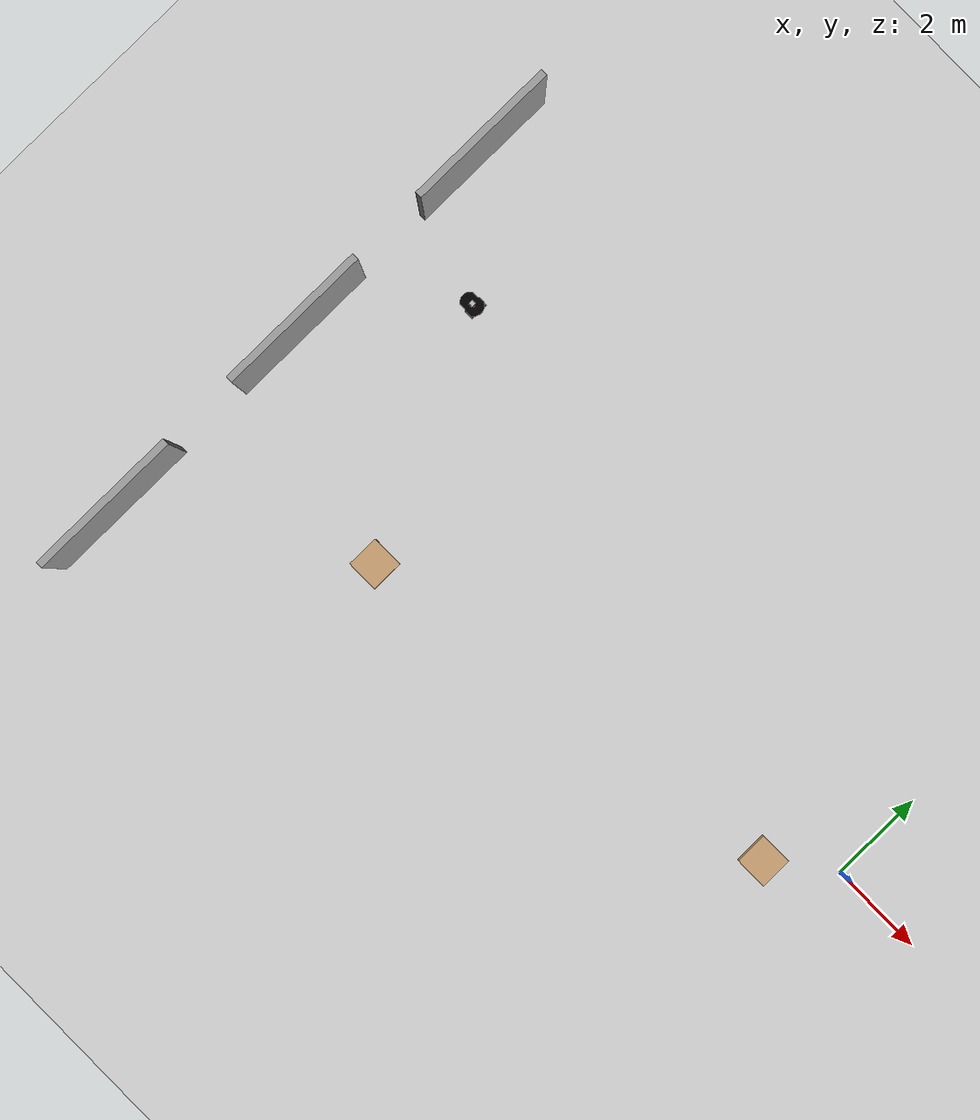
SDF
<sdf version="1.8">
 <world name="my_world">
  <physics name="1ms" type="ignored">
   <max_step_size>0.001</max_step_size>
   <real_time_factor>1.0</real_time_factor>
  </physics>
  <plugin filename="ignition-gazebo-physics-system" name="gz::sim::systems::Physics"/>
  <plugin filename="ignition-gazebo-user-commands-system" name="gz::sim::systems::UserCommands"/>
  <plugin filename="ignition-gazebo-scene-broadcaster-system" name="gz::sim::systems::SceneBroadcaster"/>
  <plugin filename="libignition-gazebo-sensors-system.so" name="ignition::gazebo::systems::Sensors">
   <render_engine>ogre2</render_engine>
  </plugin>
  <plugin filename="ignition-gazebo-imu-system" name="ignition::gazebo::systems::Imu"/>
  <light type="directional" name="sun">
   <pose>0 0 10 0 0 0</pose>
   <diffuse>0.8 0.8 0.8 1</diffuse>
   <specular>0.2 0.2 0.2 1</specular>
   <attenuation>
    <range>1000</range>
    <constant>0.9</constant>
    <linear>0.01</linear>
    <quadratic>0.001</quadratic>
   </attenuation>
   <direction>-0.5 0.1 -0.9</direction>
  </light>
  <model name="ground_plane">
   <static>true</static>
   <link name="link">
    <collision name="collision">
     <geometry><plane><normal>0 0 1</normal><size>100 100</size></plane></geometry>
    </collision>
    <visual name="visual">
     <geometry><plane><normal>0 0 1</normal><size>100 100</size></plane></geometry>
     <material>
      <ambient>0.8 0.8 0.8 1</ambient>
      <diffuse>0.8 0.8 0.8 1</diffuse>
      <specular>0.8 0.8 0.8 1</specular>
     </material>
    </visual>
   </link>
  </model>
  <include>
   <uri>model://garage_door</uri>
   <name>right_door</name>
   <pose>-15.033500 -5.081130 1.687260 0 0 0</pose>
  </include>
  <include>
   <uri>model://garage_door</uri>
   <name>central_door</name>
   <pose>-15.033500 -0.136491 1.687260 0 0 0</pose>
  </include>
  <include>
   <uri>model://garage_door</uri>
   <name>left_door</name>
   <pose>-15.033500 4.803520 1.687260 0 0 0</pose>
  </include>
  <include>
   <uri>model://pioneer2dx</uri>
   <name>robot_scan</name>
   <pose>-13.10 2.64 0 0 0 0</pose>
   <plugin filename="ignition-gazebo-pose-publisher-system" name="ignition::gazebo::systems::PosePublisher">
    <publish_link_pose>true</publish_link_pose>
    <use_pose_vector_msg>true</use_pose_vector_msg>
    <static_publisher>true</static_publisher>
    <static_update_frequency>1</static_update_frequency>
   </plugin>
   <plugin filename="ignition-gazebo-odometry-publisher-system" name="ignition::gazebo::systems::OdometryPublisher">
    <odom_topic>/odom</odom_topic>
    <odom_frame>odom</odom_frame>
    <robot_base_frame>base_footprint</robot_base_frame>
    <odom_publish_frequency>20</odom_publish_frequency>
   </plugin>
  </include>
  <include>
   <uri>model://parallelepiped</uri>
   <pose>-10.773700 -2.313900 0.15 0 0 0</pose>
   <name>start_parallelepiped</name>
  </include>
  <include>
   <uri>model://parallelepiped</uri>
   <pose>-1.257560 -0.930217 0.149231 0 0 0</pose>
   <name>end_parallelepiped</name>
  </include>
 </world>
</sdf>

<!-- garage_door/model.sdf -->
<sdf version="1.8">
    <model name = "garage_door">
        <static>true</static>
        <link name = "door_link">
            <visual name = "door_visual">
                <geometry>
                    <box>
                        <size> 0.15 3.30 3.25 </size>
                    </box>
                </geometry>
                <material>
                    <ambient>0.3 0.3 0.3 1</ambient>
                    <diffuse>0.6 0.6 0.6 1</diffuse>
                    <specular>0.9 0.9 0.9 1</specular>
                    <emissive>0 0 0 1</emissive>
                </material>
            </visual>
        </link>
    </model>
</sdf>

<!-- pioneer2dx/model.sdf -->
<sdf version="1.5">
  <model name="pioneer2dx" canonical_link='base_footprint'>
    <plugin
        filename="ignition-gazebo-joint-state-publisher-system"
        name="ignition::gazebo::systems::JointStatePublisher">
    </plugin>

    <link name='base_footprint'/>

    <joint name='footprint_to_base_joint' type='fixed'>
      <pose>0 0 0.01 0 0 0</pose>
      <parent>base_footprint</parent>
      <child>base_link</child>
      <use_parent_model_frame>true</use_parent_model_frame>
    </joint>

    <link name="base_link">
      <pose relative_to='base_footprint'>0 0 0.16 0 0 0</pose>
      <inertial>
        <mass>5.67</mass>
        <inertia>
          <ixx>0.07</ixx>
          <iyy>0.08</iyy>
          <izz>0.10</izz>
          <ixy>0</ixy>
          <ixz>0</ixz>
          <iyz>0</iyz>
        </inertia>
      </inertial>
      <collision name="collision">
        <geometry>
          <box>
            <size>0.445 0.277 0.17</size>
          </box>
        </geometry>
      </collision>
      <visual name="visual">
        <pose>0 0 0.04 0 0 0</pose>
        <geometry>
          <mesh>
            <uri>model://pioneer2dx/meshes/chassis.dae</uri>
          </mesh>
        </geometry>
      </visual>
      <collision name="caster_collision">
        <pose>-0.200 0 -0.12 0 0 0</pose>
        <geometry>
          <sphere>
            <radius>0.04</radius>
          </sphere>
        </geometry>
        <surface>
          <friction>
            <ode>
              <mu>0</mu>
              <mu2>0</mu2>
              <slip1>1.0</slip1>
              <slip2>1.0</slip2>
            </ode>
          </friction>
        </surface>
      </collision>
      <visual name="caster_visual">
        <pose>-0.200 0 -0.12 0 0 0</pose>
        <geometry>
          <sphere>
            <radius>0.04</radius>
          </sphere>
        </geometry>
        <material>
          <script>
            <uri>file://media/materials/scripts/gazebo.material</uri>
            <name>Gazebo/FlatBlack</name>
          </script>
        </material>
      </visual>

      <!-- IMU Sensor -->
      <sensor name="imu_sensor" type="imu">
        <always_on>true</always_on>
        <update_rate>200</update_rate>
        <topic>/imu/data</topic>
        <ignition_frame_id>base_link</ignition_frame_id>
        <imu>
          <angular_velocity>
            <x><noise type="gaussian"><mean>0</mean><stddev>0.009</stddev></noise></x>
            <y><noise type="gaussian"><mean>0</mean><stddev>0.009</stddev></noise></y>
            <z><noise type="gaussian"><mean>0</mean><stddev>0.009</stddev></noise></z>
          </angular_velocity>
          <linear_acceleration>
            <x><noise type="gaussian"><mean>0</mean><stddev>0.001</stddev></noise></x>
            <y><noise type="gaussian"><mean>0</mean><stddev>0.001</stddev></noise></y>
            <z><noise type="gaussian"><mean>0</mean><stddev>0.001</stddev></noise></z>
          </linear_acceleration>
        </imu>
      </sensor>
    </link>

    <link name="lidar_link">
      <pose relative_to='base_link'>0 0 0.19 0 0 0</pose>
      <inertial>
        <mass>0.1</mass>
        <inertia>
          <ixx>0.000166667</ixx>
          <iyy>0.000166667</iyy>
          <izz>0.000166667</izz>
        </inertia>
      </inertial>
      <collision name="collision">
        <geometry>
          <box>
            <size>0.1 0.1 0.1</size>
          </box>
        </geometry>
      </collision>
      <visual name="visual">
        <geometry>
          <box>
            <size>0.1 0.1 0.1</size>
          </box>
        </geometry>
      </visual>

      <sensor name='front_lidar' type='gpu_lidar'>
        <pose>0 0 0 0 0 0</pose>
        <topic>/scan</topic>
        <ignition_frame_id>lidar_link</ignition_frame_id>
        <update_rate>20</update_rate>
        <lidar>
          <scan>
            <horizontal>
              <samples>1800</samples> <!-- 1800 rays for 0.2 deg resolution -->
              <resolution>1</resolution>
              <min_angle>-3.1459</min_angle>
              <max_angle>3.1459</max_angle>
            </horizontal>
            <vertical>
              <samples>16</samples>
              <resolution>1</resolution>
              <min_angle>-0.261799</min_angle>
              <max_angle>0.261799</max_angle>
            </vertical>
          </scan>
          <range>
            <min>0.05</min>
            <max>100</max>
            <resolution>0.01</resolution>
          </range>
          <noise>
            <type>gaussian</type>
            <mean>0</mean>
            <stddev>0.01</stddev>
          </noise>
        </lidar>
        <visualize>true</visualize>
      </sensor>
    </link>

    <link name="right_wheel">
      <pose relative_to='base_link'>0.1 -0.17 -0.05 1.5707 0 0</pose>
      <inertial>
        <mass>1.5</mass>
        <inertia>
          <ixx>0.0051</ixx>
          <iyy>0.0051</iyy>
          <izz>0.0090</izz>
          <ixy>0</ixy>
          <ixz>0</ixz>
          <iyz>0</iyz>
        </inertia>
      </inertial>
      <collision name="collision">
        <geometry>
          <cylinder>
            <radius>0.11</radius>
            <length>0.05</length>
          </cylinder>
        </geometry>
        <surface>
          <friction>
            <ode>
              <mu>100000.0</mu>
              <mu2>100000.0</mu2>
              <slip1>0.0</slip1>
              <slip2>0.0</slip2>
            </ode>
          </friction>
        </surface>
      </collision>
      <visual name="visual">
        <geometry>
          <cylinder>
            <radius>0.11</radius>
            <length>0.05</length>
          </cylinder>
        </geometry>
        <material>
          <script>
            <uri>file://media/materials/scripts/gazebo.material</uri>
            <name>Gazebo/FlatBlack</name>
          </script>
        </material>
      </visual>
    </link>
    <link name="left_wheel">
      <pose relative_to='base_link'>0.1 0.17 -0.05 -1.5707 0 0</pose>
      <inertial>
        <mass>1.5</mass>
        <inertia>
          <ixx>0.0051</ixx>
          <iyy>0.0051</iyy>
          <izz>0.0090</izz>
          <ixy>0</ixy>
          <ixz>0</ixz>
          <iyz>0</iyz>
        </inertia>
      </inertial>
      <collision name="collision">
        <geometry>
          <cylinder>
            <radius>0.11</radius>
            <length>0.05</length>
          </cylinder>
        </geometry>
        <surface>
          <friction>
            <ode>
              <mu>100000.0</mu>
              <mu2>100000.0</mu2>
              <slip1>0.0</slip1>
              <slip2>0.0</slip2>
            </ode>
          </friction>
        </surface>
      </collision>
      <visual name="visual">
        <geometry>
          <cylinder>
            <radius>0.11</radius>
            <length>0.05</length>
          </cylinder>
        </geometry>
        <material>
          <script>
            <uri>file://media/materials/scripts/gazebo.material</uri>
            <name>Gazebo/FlatBlack</name>
          </script>
        </material>
      </visual>
    </link>

    <joint name='lidar_joint' type='fixed'>
      <parent>base_link</parent>
      <child>lidar_link</child>
    </joint>

    <!-- D435 Camera Link -->
    <link name="camera_link">
      <pose relative_to='base_link'>0.25 0 0.10 0 0 0</pose>
      <inertial>
        <mass>0.072</mass>
        <inertia>
          <ixx>0.00003881</ixx>
          <iyy>0.00000498</iyy>
          <izz>0.00003879</izz>
        </inertia>
      </inertial>
      <collision name="collision">
        <geometry>
          <box>
            <size>0.025 0.09 0.025</size>
          </box>
        </geometry>
      </collision>
      <visual name="visual">
        <geometry>
          <box>
            <size>0.025 0.09 0.025</size>
          </box>
        </geometry>
        <material>
          <ambient>0.1 0.1 0.1 1</ambient>
          <diffuse>0.2 0.2 0.2 1</diffuse>
        </material>
      </visual>

      <!-- RGB Camera -->
      <sensor name="color_camera" type="camera">
        <pose>0 0 0 0 0 0</pose>
        <topic>/camera/color/image_raw</topic>
        <camera_info_topic>/camera/color/camera_info</camera_info_topic>
        <ignition_frame_id>camera_color_optical_frame</ignition_frame_id>
        <update_rate>30</update_rate>
        <always_on>true</always_on>
        <visualize>true</visualize>
        <camera>
          <horizontal_fov>1.211</horizontal_fov>
          <image>
            <width>640</width>
            <height>480</height>
            <format>RGB_INT8</format>
          </image>
          <clip>
            <near>0.1</near>
            <far>100</far>
          </clip>
        </camera>
      </sensor>

      <!-- Depth Camera -->
      <sensor name="depth_camera" type="depth_camera">
        <pose>0 0 0 0 0 0</pose>
        <topic>/camera/depth/image_raw</topic>
        <camera_info_topic>/camera/depth/camera_info</camera_info_topic>
        <ignition_frame_id>camera_color_optical_frame</ignition_frame_id>
        <update_rate>30</update_rate>
        <always_on>true</always_on>
        <visualize>true</visualize>
        <camera>
          <horizontal_fov>1.211</horizontal_fov>
          <image>
            <width>640</width>
            <height>480</height>
            <format>R_FLOAT32</format>
          </image>
          <clip>
            <near>0.1</near>
            <far>100</far>
          </clip>
        </camera>
      </sensor>

      <!-- RGBD Camera for Point Cloud -->
      <sensor name="rgbd_camera" type="rgbd_camera">
        <pose>0 0 0 0 0 0</pose>
        <topic>/camera</topic>
        <ignition_frame_id>camera_link</ignition_frame_id>
        <update_rate>15</update_rate>
        <always_on>true</always_on>
        <visualize>true</visualize>
        <camera>
          <horizontal_fov>1.211</horizontal_fov>
          <image>
            <width>640</width>
            <height>480</height>
          </image>
          <clip>
            <near>0.1</near>
            <far>100</far>
          </clip>
        </camera>
      </sensor>
    </link>

    <joint name='camera_joint' type='fixed'>
      <parent>base_link</parent>
      <child>camera_link</child>
    </joint>

    <joint name='left_wheel_joint' type='revolute'>
      <pose relative_to='left_wheel'/>
      <parent>base_link</parent>
      <child>left_wheel</child>
      <use_parent_model_frame>true</use_parent_model_frame>
      <axis>
        <xyz expressed_in='__model__'>0 1 0</xyz>
        <limit>
          <lower>-1.79769e+308</lower>
          <upper>1.79769e+308</upper>
          <effort>10</effort>
          <velocity>10</velocity>
        </limit>
      </axis>
    </joint>

    <joint name='right_wheel_joint' type='revolute'>
      <pose relative_to='right_wheel'/>
      <parent>base_link</parent>
      <child>right_wheel</child>
      <use_parent_model_frame>true</use_parent_model_frame>
      <axis>
        <xyz expressed_in='__model__'>0 1 0</xyz>
        <limit>
          <lower>-1.79769e+308</lower>
          <upper>1.79769e+308</upper>
          <effort>10</effort>
          <velocity>10</velocity>
        </limit>
      </axis>
    </joint>

    <plugin filename="ignition-gazebo-diff-drive-system" name="ignition::gazebo::systems::DiffDrive">
      <topic>/cmd_vel</topic>
      <left_joint>left_wheel_joint</left_joint>
      <right_joint>right_wheel_joint</right_joint>
      <wheel_separation>0.34</wheel_separation>
      <wheel_radius>0.11</wheel_radius>
      <max_linear_acceleration>1.5</max_linear_acceleration>
      <min_linear_acceleration>-1.5</min_linear_acceleration>
      <max_angular_acceleration>1.6</max_angular_acceleration>
      <min_angular_acceleration>-1.6</min_angular_acceleration>
      <max_linear_velocity>0.4</max_linear_velocity>
      <min_linear_velocity>-0.4</min_linear_velocity>
      <max_angular_velocity>1</max_angular_velocity>
      <min_angular_velocity>-1</min_angular_velocity>
    </plugin>

    <!-- Moving Forward-->
    <plugin filename="libignition-gazebo-triggered-publisher-system.so" name="ignition::gazebo::systems::TriggeredPublisher">
      <input type="ignition.msgs.Int32" topic="/keyboard/keypress">
        <match field="data">16777235</match>
      </input>
      <output type="ignition.msgs.Twist" topic="/cmd_vel">
        linear: {x: 0.4}, angular: {z: 0.0}
      </output>
    </plugin>

    <!-- Moving Backward-->
    <plugin filename="libignition-gazebo-triggered-publisher-system.so" name="ignition::gazebo::systems::TriggeredPublisher">
      <input type="ignition.msgs.Int32" topic="/keyboard/keypress">
        <match field="data">16777237</match>
      </input>
      <output type="ignition.msgs.Twist" topic="/cmd_vel">
        linear: {x: -0.4}, angular: {z: 0.0}
      </output>
    </plugin>

    <!-- Moving Left-->
    <plugin filename="libignition-gazebo-triggered-publisher-system.so" name="ignition::gazebo::systems::TriggeredPublisher">
      <input type="ignition.msgs.Int32" topic="/keyboard/keypress">
        <match field="data">16777234</match>
      </input>
      <output type="ignition.msgs.Twist" topic="/cmd_vel">
        linear: {x: 0.0}, angular: {z: 1}
      </output>
    </plugin>

    <!-- Moving Right-->
    <plugin filename="libignition-gazebo-triggered-publisher-system.so" name="ignition::gazebo::systems::TriggeredPublisher">
      <input type="ignition.msgs.Int32" topic="/keyboard/keypress">
        <match field="data">16777236</match>
      </input>
      <output type="ignition.msgs.Twist" topic="/cmd_vel">
        linear: {x: 0.0}, angular: {z: -1}
      </output>
    </plugin>

    <!-- Stop Moving-->
    <plugin filename="libignition-gazebo-triggered-publisher-system.so" name="ignition::gazebo::systems::TriggeredPublisher">
      <input type="ignition.msgs.Int32" topic="/keyboard/keypress">
        <match field="data">83</match>        <!--83 is the key s-->
      </input>
      <output type="ignition.msgs.Twist" topic="/cmd_vel">
        linear: {x: 0.0}, angular: {z: 0.0}
      </output>
    </plugin>
  </model>
</sdf>

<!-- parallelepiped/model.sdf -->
<sdf version="1.8">
    <model name = "parallelepiped">
        <static>true</static>
        <link name = "parallelepiped_link">
            <visual name = "parallelepiped_visual">
                <geometry>
                    <box>
                        <size> 0.7 0.7 0.3 </size>
                    </box>
                </geometry>
                <material>
                    <ambient>0.76 0.60 0.42 1</ambient>
                    <diffuse>0.76 0.60 0.42 1</diffuse>
                    <specular>0.2 0.2 0.2 1</specular>
                    <emissive>0 0 0 1</emissive>
                </material>
            </visual>
            <collision name = "parallelepiped_collision">
                <geometry>
                    <box>
                        <size> 0.7 0.7 0.3 </size>
                    </box>
                </geometry>
            </collision>
        </link>
    </model>
</sdf>
